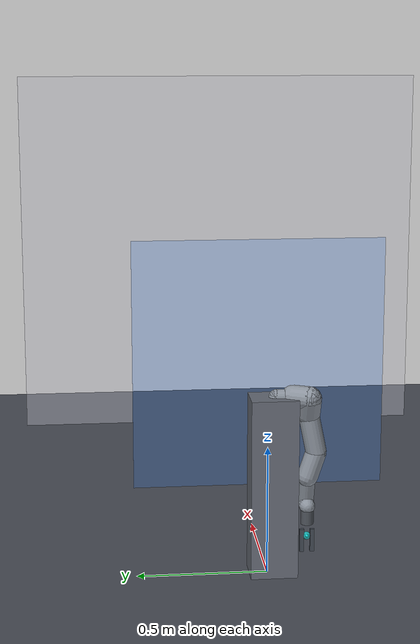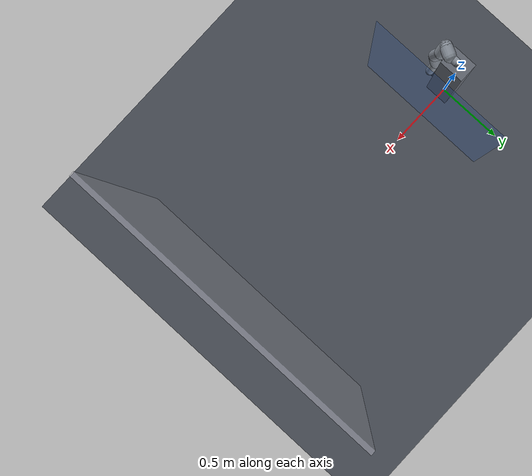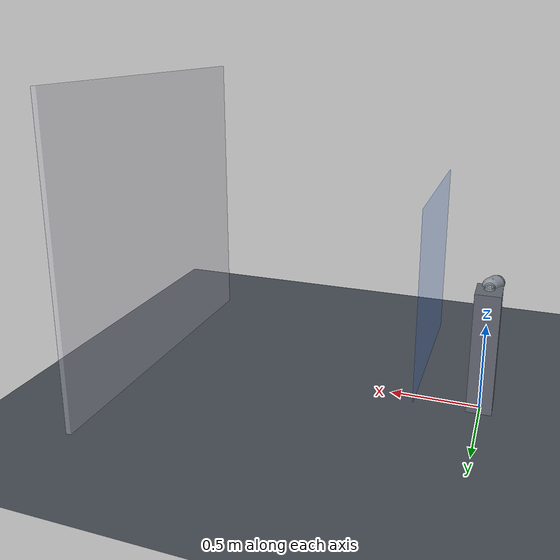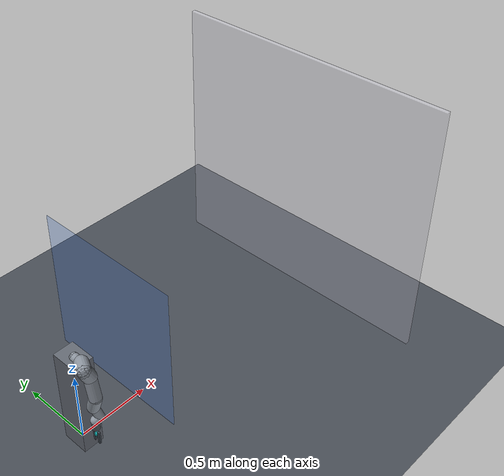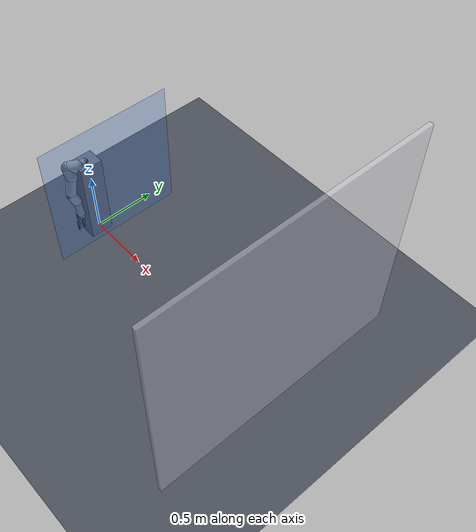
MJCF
<?xml version='1.0' encoding='utf-8'?>
<mujoco model="openarm_right">
  <compiler angle="radian" />
  <option timestep="0.002" integrator="implicitfast" />
  <visual>
    <headlight ambient="0.4 0.4 0.4" diffuse="0.6 0.6 0.6" />
    <map znear="0.01" />
  </visual>
  <asset>
    <texture name="grid" type="2d" builtin="checker" rgb1="0.25 0.27 0.3" rgb2="0.32 0.34 0.38" width="300" height="300" />
    <material name="mat_grid" texture="grid" texrepeat="6 6" reflectance="0.1" />
  </asset>
  <worldbody>
    <light pos="1.5 -1.5 2.5" dir="-1 1 -1.2" directional="true" />
    <geom name="floor" type="plane" size="3 3 0.1" material="mat_grid" />
    <geom name="wall" type="box" size="0.015 1.0 0.9" pos="2.015 0 0.9" rgba="0.85 0.85 0.9 0.4" contype="0" conaffinity="0" />
    <geom name="tcp_plane" type="box" size="0.002 0.5 0.5" pos="0.3 0 0.75" rgba="0.2 0.5 1.0 0.25" contype="0" conaffinity="0" />
    <geom name="torso" type="box" size="0.07 0.09 0.35" pos="0 -0.02 0.35" rgba="0.4 0.42 0.46 1" contype="0" conaffinity="0" />
    <body name="openarm_body_link0" pos="0 0 0" quat="1 0 0 0">
      <inertial pos="0 0 0" mass="13.89" fullinertia="1.653 1.653 0.051 0 0 0" />
      <geom type="capsule" fromto="0 0 0 0 -0.031 0.698" size="0.03" rgba="0.55 0.58 0.62 1" contype="0" conaffinity="0" />
      <body name="openarm_right_link0" pos="0 -0.031 0.698" quat="0.707105 0.707108 0 0">
        <inertial pos="-0.000948336 0.000158021 0.0307686" mass="1.14323" fullinertia="0.001128 0.000962 0.00147 -4e-06 -3.3e-05 -7e-06" />
        <geom type="capsule" fromto="0 0 0 0 0 0.0625" size="0.03" rgba="0.55 0.58 0.62 1" contype="0" conaffinity="0" />
        <body name="openarm_right_link1" pos="0 0 0.0625" quat="1 0 0 0">
          <inertial pos="0.00114677 3.31999e-05 0.0539528" mass="1.14167" fullinertia="0.001567 0.001273 0.001016 -1e-06 -2.9e-05 1e-06" />
          <joint name="openarm_right_joint1" type="hinge" axis="0 0 1" damping="1.0" range="-0.368940 4.428640" limited="true" />
          <geom type="capsule" fromto="0 0 0 -0.0301 0 0.06" size="0.045" rgba="0.55 0.58 0.62 1" contype="0" conaffinity="0" />
          <body name="openarm_right_link2" pos="-0.0301 0 0.06" quat="0.707107 0.707107 0 0">
            <inertial pos="0.00839629 -2.01451e-08 0.0325665" mass="0.277509" fullinertia="0.000359 0.000376 0.000232 1e-06 -0.000109 1e-06" />
            <joint name="openarm_right_joint2" type="hinge" axis="-1 0 0" damping="1.0" range="-0.168640 3.233540" limited="true" />
            <geom type="capsule" fromto="0 0 0 0.0301 0 0.06625" size="0.045" rgba="0.55 0.58 0.62 1" contype="0" conaffinity="0" />
            <body name="openarm_right_link3" pos="0.0301 0 0.06625" quat="1 0 0 0">
              <inertial pos="-0.00210475 0.000554909 0.0904747" mass="1.07386" fullinertia="0.004372 0.004319 0.000661 1e-06 1.1e-05 -3.6e-05" />
              <joint name="openarm_right_joint3" type="hinge" axis="0 0 1" damping="1.0" range="-1.406940 1.623740" limited="true" />
              <geom type="capsule" fromto="0 0 0 -0 0.0315 0.15375" size="0.04" rgba="0.55 0.58 0.62 1" contype="0" conaffinity="0" />
              <body name="openarm_right_link4" pos="-0 0.0315 0.15375" quat="1 0 0 0">
                <inertial pos="-0.00290068 -0.0303058 0.0633964" mass="0.634853" fullinertia="0.000623 0.000511 0.000334 -1e-06 -1.9e-05 3.8e-05" />
                <joint name="openarm_right_joint4" type="hinge" axis="0 1 0" damping="1.0" range="0.044960 2.413740" limited="true" />
                <geom type="capsule" fromto="0 0 0 0 -0.0315 0.0955" size="0.04" rgba="0.55 0.58 0.62 1" contype="0" conaffinity="0" />
                <body name="openarm_right_link5" pos="0 -0.0315 0.0955" quat="1 0 0 0">
                  <inertial pos="-0.00304967 0.00088669 0.0430798" mass="0.615659" fullinertia="0.000423 0.000445 0.000324 -8e-06 6e-06 -6e-06" />
                  <joint name="openarm_right_joint5" type="hinge" axis="0 0 1" damping="1.0" range="-1.518740 1.525640" limited="true" />
                  <geom type="capsule" fromto="0 0 0 0.0375 0 0.1205" size="0.03" rgba="0.55 0.58 0.62 1" contype="0" conaffinity="0" />
                  <body name="openarm_right_link6" pos="0.0375 0 0.1205" quat="1 0 0 0">
                    <inertial pos="-0.0371366 0.000332305 -9.49837e-05" mass="0.475203" fullinertia="0.000143 0.000157 0.000159 1e-06 1e-06 1e-06" />
                    <joint name="openarm_right_joint6" type="hinge" axis="1 0 0" damping="1.0" range="-0.800340 0.668840" limited="true" />
                    <geom type="capsule" fromto="0 0 0 -0.0375 0 0" size="0.03" rgba="0.55 0.58 0.62 1" contype="0" conaffinity="0" />
                    <body name="openarm_right_link7" pos="-0.0375 0 0" quat="1 0 0 0">
                      <inertial pos="6.87551e-05 0.0126618 0.0695195" mass="0.465977" fullinertia="0.000639 0.000497 0.000342 1e-06 1e-06 8.9e-05" />
                      <joint name="openarm_right_joint7" type="hinge" axis="0 1 0" damping="1.0" range="-1.591540 1.479840" limited="true" />
%s  <geom type="sphere" size="0.015" pos="0 0 0.12" rgba="0.1 0.9 0.9 0.7" contype="0" conaffinity="0" />
%s  <site name="tcp" pos="0 0 0.12" size="0.006" rgba="0.1 0.9 0.9 1" />
%s  <geom type="cylinder" size="0.025 0.03" pos="0 0 0.04" rgba="0.3 0.32 0.35 1" contype="0" conaffinity="0" />
                      <body name="finger_openarm_right_finger_joint1" pos="0 0 0.1025">
                        <joint name="openarm_right_finger_joint1" type="slide" axis="0 -1 0" range="0 0.044" limited="true" damping="0.5" />
                        <geom type="box" size="0.006 0.008 0.045" pos="0 -0.02 0.035" rgba="0.25 0.28 0.32 1" contype="0" conaffinity="0" />
                      </body>
                      <body name="finger_openarm_right_finger_joint2" pos="0 0 0.1025">
                        <joint name="openarm_right_finger_joint2" type="slide" axis="0 1 0" range="0 0.044" limited="true" damping="0.5" />
                        <geom type="box" size="0.006 0.008 0.045" pos="0 0.02 0.035" rgba="0.25 0.28 0.32 1" contype="0" conaffinity="0" />
                      </body>
                      <body name="openarm_right_hand_tcp" pos="0 0 0" quat="1 0 0 0">
                    </body>
                    </body>
                  </body>
                </body>
              </body>
            </body>
          </body>
        </body>
      </body>
    </body>
  </worldbody>
  <actuator>
    <position name="act_openarm_right_joint1" joint="openarm_right_joint1" kp="300.0" ctrlrange="-1.4174 3.5118" forcerange="-40 40" />
    <position name="act_openarm_right_joint2" joint="openarm_right_joint2" kp="300.0" ctrlrange="-0.195904 3.3375" forcerange="-40 40" />
    <position name="act_openarm_right_joint3" joint="openarm_right_joint3" kp="150.0" ctrlrange="-1.6252 1.6252" forcerange="-27 27" />
    <position name="act_openarm_right_joint4" joint="openarm_right_joint4" kp="150.0" ctrlrange="-0.01 2.234" forcerange="-27 27" />
    <position name="act_openarm_right_joint5" joint="openarm_right_joint5" kp="60.0" ctrlrange="-1.5891 1.5891" forcerange="-7 7" />
    <position name="act_openarm_right_joint6" joint="openarm_right_joint6" kp="60.0" ctrlrange="-0.7716 0.7716" forcerange="-7 7" />
    <position name="act_openarm_right_joint7" joint="openarm_right_joint7" kp="60.0" ctrlrange="-1.5952 1.5952" forcerange="-7 7" />
    <position name="act_openarm_right_finger_joint1" joint="openarm_right_finger_joint1" kp="200" ctrlrange="0 0.044" forcerange="-100 100" />
    <position name="act_openarm_right_finger_joint2" joint="openarm_right_finger_joint2" kp="200" ctrlrange="0 0.044" forcerange="-100 100" />
  </actuator>
</mujoco>
